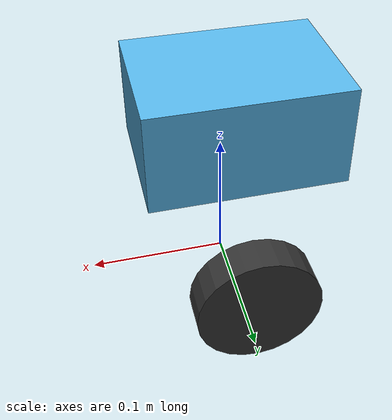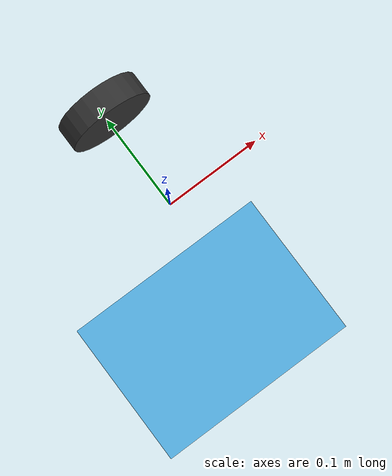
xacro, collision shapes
<?xml version="1.0"?>
<robot xmlns:xacro="http://www.ros.org/wiki/xacro" name="mbot">
<material name="black">
    <color rgba="0.2 0.2 0.2 1.0"/>
</material>
<!-- ===================== MAIN BODY =========================== -->

  <link name="base_footprint"/>

  <!-- base link is at the center of the wheel -->
  <joint name="base_joint" type="fixed">
    <parent link="base_footprint"/>
    <child link="base_link"/>
    <origin xyz="0 0 0.042" rpy="0 0 0"/>
  </joint>

  <!-- CHASSIS -->
  <link name="base_link">
    <visual>
      <geometry>
        <mesh filename="package://mbot_description/meshes/mbot-classic-simplied.dae"/>
      </geometry>
      <origin rpy="0 0 0" xyz="-0.04 -0.115 0.005"/>
    </visual>
    <collision>
      <geometry>
        <box size="0.18 0.13 0.095"/>
      </geometry>
      <origin rpy="0 0 0" xyz="-0.04 -0.115 0.005"/>
    </collision>
  </link>

  <!-- CAMERA -->
  <link name="camera"/>

  <joint name="camera_joint" type="fixed">
    <parent link="base_link"/>
    <child link="camera"/>
    <origin xyz="0.05751 0 0.02936" rpy="-1.57 0 -1.57"/>
  </joint>

  <!-- WHEELS -->
  <link name="left_wheel_link">
    <visual>
      <geometry>
        <mesh filename="package://mbot_description/meshes/wheel_l.stl" scale="0.001 0.001 0.001"/>
      </geometry>
      <origin rpy="0 0 0" xyz="0 0 0.0115"/>
      <material name="black"/>
    </visual>
    <collision>
      <geometry>
        <cylinder radius="0.042" length="0.024"/>
      </geometry>
      <origin rpy="0 0 0" xyz="0 0 0.0115"/>
    </collision>
      </link>
  <link name="right_wheel_link">
    <visual>
      <geometry>
        <mesh filename="package://mbot_description/meshes/wheel_r.stl" scale="0.001 0.001 0.001"/>
      </geometry>
      <origin rpy="0 0 0" xyz="0 0 0.0115"/>
      <material name="black"/>
    </visual>
    <collision>
      <geometry>
        <cylinder radius="0.042" length="0.024"/>
      </geometry>
      <origin rpy="0 0 0" xyz="0 0 0.0115"/>
    </collision>

  </link>

  <joint name="left_wheel_joint" type="continuous">
    <parent link="base_link"/>
    <child link="left_wheel_link"/>
    <origin xyz="0 0.085 0" rpy="-1.5708 0 0"/>
    <axis xyz="0 0 1"/>
  </joint>

  <joint name="right_wheel_joint" type="continuous">
    <parent link="base_link"/>
    <child link="right_wheel_link"/>
    <origin xyz="0 -0.085 0" rpy="1.5708 0 0"/>
    <axis xyz="0 0 -1"/>
  </joint>

  <!-- RPLidar A1 (Directly above base_link) -->
  <link name="lidar_link"/>

  <joint name="lidar_joint" type="fixed">
    <parent link="base_link"/>
    <child link="lidar_link"/>
    <origin xyz="0 0 0.14179" rpy="0 0 3.14"/>
  </joint>

</robot>
